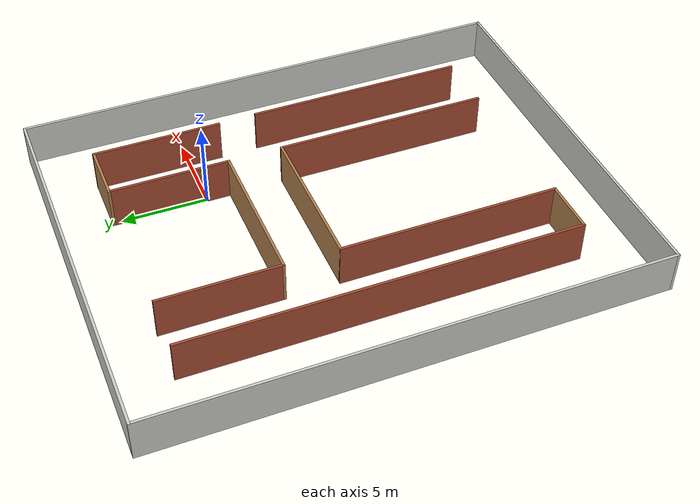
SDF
<?xml version='1.0'?>
<sdf version='1.6'>
  <model name='H_shaped_course'>
    <pose frame=''>-4.38852 -5.95909 0 0 -0 0</pose>
    <link name='Wall_10'>
      <collision name='Wall_10_Collision'>
        <geometry>
          <box>
            <size>12.75 0.15 2.5</size>
          </box>
        </geometry>
        <pose frame=''>0 0 1.25 0 -0 0</pose>
      </collision>
      <visual name='Wall_10_Visual'>
        <pose frame=''>0 0 1.25 0 -0 0</pose>
        <geometry>
          <box>
            <size>12.75 0.15 2.5</size>
          </box>
        </geometry>
        <material>
          <script>
            <uri>file://media/materials/scripts/gazebo.material</uri>
            <name>Gazebo/Bricks</name>
          </script>
          <ambient>1 1 1 1</ambient>
        </material>
        <meta>
          <layer>0</layer>
        </meta>
      </visual>
      <pose frame=''>-4.52948 -4.89593 0 0 -0 1.5708</pose>
    </link>
    <link name='Wall_11'>
      <collision name='Wall_11_Collision'>
        <geometry>
          <box>
            <size>9 0.15 2.5</size>
          </box>
        </geometry>
        <pose frame=''>0 0 1.25 0 -0 0</pose>
      </collision>
      <visual name='Wall_11_Visual'>
        <pose frame=''>0 0 1.25 0 -0 0</pose>
        <geometry>
          <box>
            <size>9 0.15 2.5</size>
          </box>
        </geometry>
        <material>
          <script>
            <uri>file://media/materials/scripts/gazebo.material</uri>
            <name>Gazebo/Wood</name>
          </script>
          <ambient>1 1 1 1</ambient>
        </material>
        <meta>
          <layer>0</layer>
        </meta>
      </visual>
      <pose frame=''>-0.104482 1.40407 0 0 -0 0</pose>
    </link>
    <link name='Wall_12'>
      <collision name='Wall_12_Collision'>
        <geometry>
          <box>
            <size>12.5 0.15 2.5</size>
          </box>
        </geometry>
        <pose frame=''>0 0 1.25 0 -0 0</pose>
      </collision>
      <visual name='Wall_12_Visual'>
        <pose frame=''>0 0 1.25 0 -0 0</pose>
        <geometry>
          <box>
            <size>12.5 0.15 2.5</size>
          </box>
        </geometry>
        <material>
          <script>
            <uri>file://media/materials/scripts/gazebo.material</uri>
            <name>Gazebo/Bricks</name>
          </script>
          <ambient>1 1 1 1</ambient>
        </material>
        <meta>
          <layer>0</layer>
        </meta>
      </visual>
      <pose frame=''>4.32052 -4.77093 0 0 -0 -1.5708</pose>
    </link>
    <link name='Wall_17'>
      <collision name='Wall_17_Collision'>
        <geometry>
          <box>
            <size>23 0.15 2.5</size>
          </box>
        </geometry>
        <pose frame=''>0 0 1.25 0 -0 0</pose>
      </collision>
      <visual name='Wall_17_Visual'>
        <pose frame=''>0 0 1.25 0 -0 0</pose>
        <geometry>
          <box>
            <size>23 0.15 2.5</size>
          </box>
        </geometry>
        <material>
          <script>
            <uri>file://media/materials/scripts/gazebo.material</uri>
            <name>Gazebo/CeilingTiled</name>
          </script>
          <ambient>1 1 1 1</ambient>
        </material>
        <meta>
          <layer>0</layer>
        </meta>
      </visual>
      <pose frame=''>-0 14.55 0 0 -0 0</pose>
    </link>
    <link name='Wall_18'>
      <collision name='Wall_18_Collision'>
        <geometry>
          <box>
            <size>29.25 0.15 2.5</size>
          </box>
        </geometry>
        <pose frame=''>0 0 1.25 0 -0 0</pose>
      </collision>
      <visual name='Wall_18_Visual'>
        <pose frame=''>0 0 1.25 0 -0 0</pose>
        <geometry>
          <box>
            <size>29.25 0.15 2.5</size>
          </box>
        </geometry>
        <material>
          <script>
            <uri>file://media/materials/scripts/gazebo.material</uri>
            <name>Gazebo/CeilingTiled</name>
          </script>
          <ambient>1 1 1 1</ambient>
        </material>
        <meta>
          <layer>0</layer>
        </meta>
      </visual>
      <pose frame=''>11.425 0 0 0 -0 -1.5708</pose>
    </link>
    <link name='Wall_19'>
      <collision name='Wall_19_Collision'>
        <geometry>
          <box>
            <size>23 0.15 2.5</size>
          </box>
        </geometry>
        <pose frame=''>0 0 1.25 0 -0 0</pose>
      </collision>
      <visual name='Wall_19_Visual'>
        <pose frame=''>0 0 1.25 0 -0 0</pose>
        <geometry>
          <box>
            <size>23 0.15 2.5</size>
          </box>
        </geometry>
        <material>
          <script>
            <uri>file://media/materials/scripts/gazebo.material</uri>
            <name>Gazebo/CeilingTiled</name>
          </script>
          <ambient>1 1 1 1</ambient>
        </material>
        <meta>
          <layer>0</layer>
        </meta>
      </visual>
      <pose frame=''>-0 -14.55 0 0 -0 3.14159</pose>
    </link>
    <link name='Wall_20'>
      <collision name='Wall_20_Collision'>
        <geometry>
          <box>
            <size>29.25 0.15 2.5</size>
          </box>
        </geometry>
        <pose frame=''>0 0 1.25 0 -0 0</pose>
      </collision>
      <visual name='Wall_20_Visual'>
        <pose frame=''>0 0 1.25 0 -0 0</pose>
        <geometry>
          <box>
            <size>29.25 0.15 2.5</size>
          </box>
        </geometry>
        <material>
          <script>
            <uri>file://media/materials/scripts/gazebo.material</uri>
            <name>Gazebo/CeilingTiled</name>
          </script>
          <ambient>1 1 1 1</ambient>
        </material>
        <meta>
          <layer>0</layer>
        </meta>
      </visual>
      <pose frame=''>-11.425 0 0 0 -0 1.5708</pose>
    </link>
    <link name='Wall_22'>
      <collision name='Wall_22_Collision'>
        <geometry>
          <box>
            <size>7.5 0.15 2.5</size>
          </box>
        </geometry>
        <pose frame=''>0 0 1.25 0 -0 0</pose>
      </collision>
      <visual name='Wall_22_Visual'>
        <pose frame=''>0 0 1.25 0 -0 0</pose>
        <geometry>
          <box>
            <size>7.5 0.15 2.5</size>
          </box>
        </geometry>
        <material>
          <script>
            <uri>file://media/materials/scripts/gazebo.material</uri>
            <name>Gazebo/Bricks</name>
          </script>
          <ambient>1 1 1 1</ambient>
        </material>
        <meta>
          <layer>0</layer>
        </meta>
      </visual>
      <pose frame=''>7.71017 7.73708 0 0 -0 -1.5708</pose>
    </link>
    <link name='Wall_24'>
      <collision name='Wall_24_Collision'>
        <geometry>
          <box>
            <size>12.75 0.15 2.5</size>
          </box>
        </geometry>
        <pose frame=''>0 0 1.25 0 -0 0</pose>
      </collision>
      <visual name='Wall_24_Visual'>
        <pose frame=''>0 0 1.25 0 -0 0</pose>
        <geometry>
          <box>
            <size>12.75 0.15 2.5</size>
          </box>
        </geometry>
        <material>
          <script>
            <uri>file://media/materials/scripts/gazebo.material</uri>
            <name>Gazebo/Bricks</name>
          </script>
          <ambient>1 1 1 1</ambient>
        </material>
        <meta>
          <layer>0</layer>
        </meta>
      </visual>
      <pose frame=''>7.7717 -4.56101 0 0 -0 1.5708</pose>
    </link>
    <link name='Wall_3'>
      <collision name='Wall_3_Collision'>
        <geometry>
          <box>
            <size>3.5 0.15 2.5</size>
          </box>
        </geometry>
        <pose frame=''>0 0 1.25 0 -0 0</pose>
      </collision>
      <visual name='Wall_3_Visual'>
        <pose frame=''>0 0 1.25 0 -0 0</pose>
        <geometry>
          <box>
            <size>3.5 0.15 2.5</size>
          </box>
        </geometry>
        <material>
          <script>
            <uri>file://media/materials/scripts/gazebo.material</uri>
            <name>Gazebo/Wood</name>
          </script>
          <ambient>1 1 1 1</ambient>
        </material>
        <meta>
          <layer>0</layer>
        </meta>
      </visual>
      <pose frame=''>5.99552 11.4041 0 0 -0 3.14159</pose>
    </link>
    <link name='Wall_4'>
      <collision name='Wall_4_Collision'>
        <geometry>
          <box>
            <size>7 0.15 2.5</size>
          </box>
        </geometry>
        <pose frame=''>0 0 1.25 0 -0 0</pose>
      </collision>
      <visual name='Wall_4_Visual'>
        <pose frame=''>0 0 1.25 0 -0 0</pose>
        <geometry>
          <box>
            <size>7 0.15 2.5</size>
          </box>
        </geometry>
        <material>
          <script>
            <uri>file://media/materials/scripts/gazebo.material</uri>
            <name>Gazebo/Bricks</name>
          </script>
          <ambient>1 1 1 1</ambient>
        </material>
        <meta>
          <layer>0</layer>
        </meta>
      </visual>
      <pose frame=''>4.32052 7.97907 0 0 -0 -1.5708</pose>
    </link>
    <link name='Wall_5'>
      <collision name='Wall_5_Collision'>
        <geometry>
          <box>
            <size>9 0.15 2.5</size>
          </box>
        </geometry>
        <pose frame=''>0 0 1.25 0 -0 0</pose>
      </collision>
      <visual name='Wall_5_Visual'>
        <pose frame=''>0 0 1.25 0 -0 0</pose>
        <geometry>
          <box>
            <size>9 0.15 2.5</size>
          </box>
        </geometry>
        <material>
          <script>
            <uri>file://media/materials/scripts/gazebo.material</uri>
            <name>Gazebo/Wood</name>
          </script>
          <ambient>1 1 1 1</ambient>
        </material>
        <meta>
          <layer>0</layer>
        </meta>
      </visual>
      <pose frame=''>-0.104482 4.55407 0 0 -0 3.14159</pose>
    </link>
    <link name='Wall_6'>
      <collision name='Wall_6_Collision'>
        <geometry>
          <box>
            <size>7 0.15 2.5</size>
          </box>
        </geometry>
        <pose frame=''>0 0 1.25 0 -0 0</pose>
      </collision>
      <visual name='Wall_6_Visual'>
        <pose frame=''>0 0 1.25 0 -0 0</pose>
        <geometry>
          <box>
            <size>7 0.15 2.5</size>
          </box>
        </geometry>
        <material>
          <script>
            <uri>file://media/materials/scripts/gazebo.material</uri>
            <name>Gazebo/Bricks</name>
          </script>
          <ambient>1 1 1 1</ambient>
        </material>
        <meta>
          <layer>0</layer>
        </meta>
      </visual>
      <pose frame=''>-4.52948 7.97907 0 0 -0 1.5708</pose>
    </link>
    <link name='Wall_8'>
      <collision name='Wall_8_Collision'>
        <geometry>
          <box>
            <size>22.75 0.15 2.5</size>
          </box>
        </geometry>
        <pose frame=''>0 0 1.25 0 -0 0</pose>
      </collision>
      <visual name='Wall_8_Visual'>
        <pose frame=''>0 0 1.25 0 -0 0</pose>
        <geometry>
          <box>
            <size>22.75 0.15 2.5</size>
          </box>
        </geometry>
        <material>
          <script>
            <uri>file://media/materials/scripts/gazebo.material</uri>
            <name>Gazebo/Bricks</name>
          </script>
          <ambient>1 1 1 1</ambient>
        </material>
        <meta>
          <layer>0</layer>
        </meta>
      </visual>
      <pose frame=''>-7.62948 0.104067 0 0 -0 -1.5708</pose>
    </link>
    <link name='Wall_9'>
      <collision name='Wall_9_Collision'>
        <geometry>
          <box>
            <size>3.25 0.15 2.5</size>
          </box>
        </geometry>
        <pose frame=''>0 0 1.25 0 -0 0</pose>
      </collision>
      <visual name='Wall_9_Visual'>
        <pose frame=''>0 0 1.25 0 -0 0</pose>
        <geometry>
          <box>
            <size>3.25 0.15 2.5</size>
          </box>
        </geometry>
        <material>
          <script>
            <uri>file://media/materials/scripts/gazebo.material</uri>
            <name>Gazebo/Wood</name>
          </script>
          <ambient>1 1 1 1</ambient>
        </material>
        <meta>
          <layer>0</layer>
        </meta>
      </visual>
      <pose frame=''>-6.07948 -11.1959 0 0 -0 0</pose>
    </link>
    <static>1</static>
  </model>
</sdf>
